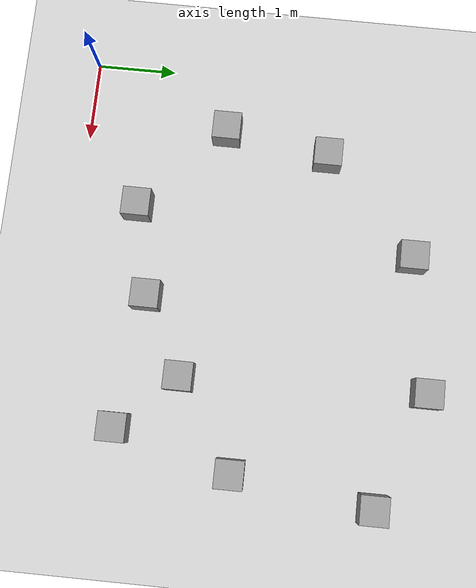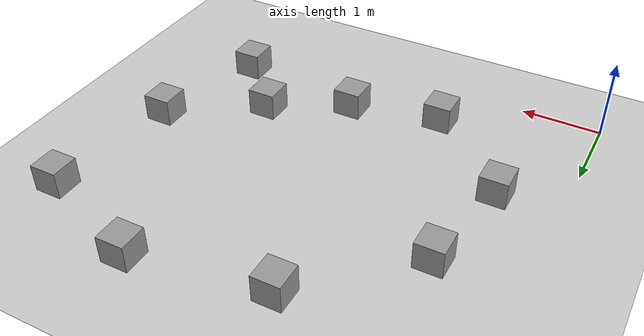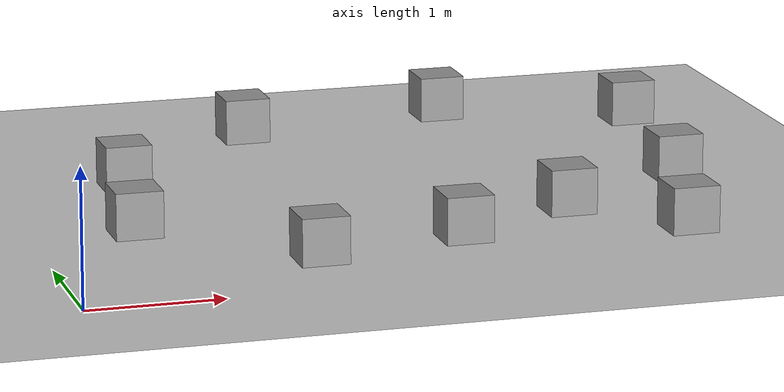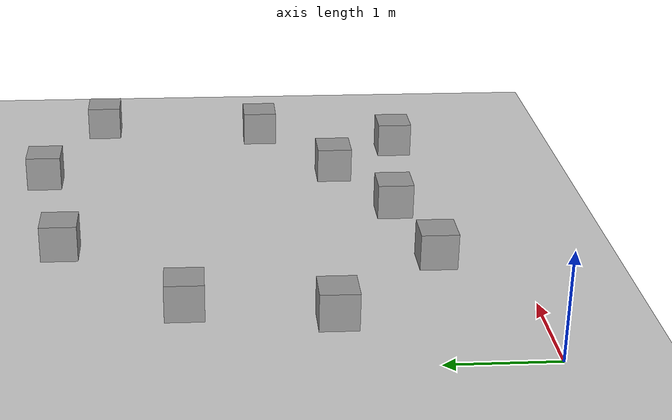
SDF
<sdf version="1.7">
 <world name="default">
  <light name="sun" type="directional">
   <pose>0 0 10 0 -0 0</pose>
   <diffuse>0.8 0.8 0.8 1</diffuse>
   <specular>0.2 0.2 0.2 1</specular>
   <attenuation>
    <range>1000</range>
    <constant>0.9</constant>
    <linear>0.01</linear>
    <quadratic>0.001</quadratic>
   </attenuation>
   <direction>-0.5 0.1 -0.9</direction>
   <spot><inner_angle>0</inner_angle><outer_angle>0</outer_angle><falloff>0</falloff></spot>
  </light>
  <model name="ground_plane">
   <static>1</static>
   <link name="link">
    <collision name="collision">
     <geometry><plane><normal>0 0 1</normal><size>100 100</size></plane></geometry>
     <surface>
      <contact><collide_bitmask>65535</collide_bitmask></contact>
      <friction><ode><mu>100</mu><mu2>50</mu2></ode></friction>
     </surface>
    </collision>
    <visual name="visual">
     <cast_shadows>0</cast_shadows>
     <geometry><plane><normal>0 0 1</normal><size>100 100</size></plane></geometry>
     <material>
      <script><uri>file://media/materials/scripts/gazebo.material</uri><name>Gazebo/Grey</name></script>
     </material>
    </visual>
   </link>
  </model>
  <gravity>0 0 -9.8</gravity>
  <magnetic_field>6e-06 2.3e-05 -4.2e-05</magnetic_field>
  <atmosphere type="adiabatic"/>
  <physics type="ode">
   <max_step_size>0.01</max_step_size>
   <real_time_factor>1</real_time_factor>
   <real_time_update_rate>100</real_time_update_rate>
  </physics>
  <scene><ambient>0.4 0.4 0.4 1</ambient><background>0.7 0.7 0.7 1</background><shadows>1</shadows></scene>
  <spherical_coordinates>
   <surface_model>EARTH_WGS84</surface_model>
   <latitude_deg>0</latitude_deg>
   <longitude_deg>0</longitude_deg>
   <elevation>0</elevation>
   <heading_deg>0</heading_deg>
  </spherical_coordinates>
  <model name="block35">
   <link name="link">
    <inertial>
     <mass>5.30426</mass>
     <inertia><ixx>4.09501</ixx><ixy>0</ixy><ixz>0</ixz><iyy>1.73225</iyy><iyz>0</iyz><izz>4.50976</izz></inertia>
    </inertial>
    <visual name="visual">
     <geometry><box><size>0.35 0.35 0.35</size></box></geometry>
     <material>
      <script><name>Gazebo/Grey</name><uri>file://media/materials/scripts/gazebo.material</uri></script>
      <shader type="pixel"/>
     </material>
    </visual>
    <collision name="collision">
     <geometry><box><size>0.35 0.35 0.35</size></box></geometry>
     <surface>
      <friction>
       <ode><mu>1</mu><mu2>1</mu2><fdir1>0 0 0</fdir1><slip1>0</slip1><slip2>0</slip2></ode>
       <torsional>
        <coefficient>1</coefficient>
        <patch_radius>0</patch_radius>
        <surface_radius>0</surface_radius>
        <use_patch_radius>1</use_patch_radius>
        <ode><slip>0</slip></ode>
       </torsional>
      </friction>
      <bounce><restitution_coefficient>0</restitution_coefficient><threshold>1e+06</threshold></bounce>
      <contact>
       <collide_without_contact>0</collide_without_contact>
       <collide_without_contact_bitmask>1</collide_without_contact_bitmask>
       <collide_bitmask>1</collide_bitmask>
       <ode>
        <soft_cfm>0</soft_cfm>
        <soft_erp>0.2</soft_erp>
        <kp>1e+13</kp>
        <kd>1</kd>
        <max_vel>0.01</max_vel>
        <min_depth>0</min_depth>
       </ode>
       <bullet>
        <split_impulse>1</split_impulse>
        <split_impulse_penetration_threshold>-0.01</split_impulse_penetration_threshold>
        <soft_cfm>0</soft_cfm>
        <soft_erp>0.2</soft_erp>
        <kp>1e+13</kp>
        <kd>1</kd>
       </bullet>
      </contact>
     </surface>
    </collision>
   </link>
   <static>0</static>
   <pose>0.763897 1.775 0.17504 0 0.000227 -0.001539</pose>
  </model>
  <model name="block35_0">
   <link name="link">
    <inertial>
     <mass>5.30426</mass>
     <inertia><ixx>4.09501</ixx><ixy>0</ixy><ixz>0</ixz><iyy>1.73225</iyy><iyz>0</iyz><izz>4.50976</izz></inertia>
    </inertial>
    <visual name="visual">
     <geometry><box><size>0.35 0.35 0.35</size></box></geometry>
     <material>
      <script><name>Gazebo/Grey</name><uri>file://media/materials/scripts/gazebo.material</uri></script>
      <shader type="pixel"/>
     </material>
    </visual>
    <collision name="collision">
     <geometry><box><size>0.35 0.35 0.35</size></box></geometry>
     <surface>
      <friction>
       <ode><mu>1</mu><mu2>1</mu2><fdir1>0 0 0</fdir1><slip1>0</slip1><slip2>0</slip2></ode>
       <torsional>
        <coefficient>1</coefficient>
        <patch_radius>0</patch_radius>
        <surface_radius>0</surface_radius>
        <use_patch_radius>1</use_patch_radius>
        <ode><slip>0</slip></ode>
       </torsional>
      </friction>
      <bounce><restitution_coefficient>0</restitution_coefficient><threshold>1e+06</threshold></bounce>
      <contact>
       <collide_without_contact>0</collide_without_contact>
       <collide_without_contact_bitmask>1</collide_without_contact_bitmask>
       <collide_bitmask>1</collide_bitmask>
       <ode>
        <soft_cfm>0</soft_cfm>
        <soft_erp>0.2</soft_erp>
        <kp>1e+13</kp>
        <kd>1</kd>
        <max_vel>0.01</max_vel>
        <min_depth>0</min_depth>
       </ode>
       <bullet>
        <split_impulse>1</split_impulse>
        <split_impulse_penetration_threshold>-0.01</split_impulse_penetration_threshold>
        <soft_cfm>0</soft_cfm>
        <soft_erp>0.2</soft_erp>
        <kp>1e+13</kp>
        <kd>1</kd>
       </bullet>
      </contact>
     </surface>
    </collision>
   </link>
   <static>0</static>
   <pose>2.19677 4.24642 0.174916 0.00017 -0.00031 0.002628</pose>
  </model>
  <model name="block35_1">
   <link name="link">
    <inertial>
     <mass>5.30426</mass>
     <inertia><ixx>4.09501</ixx><ixy>0</ixy><ixz>0</ixz><iyy>1.73225</iyy><iyz>0</iyz><izz>4.50976</izz></inertia>
    </inertial>
    <visual name="visual">
     <geometry><box><size>0.35 0.35 0.35</size></box></geometry>
     <material>
      <script><name>Gazebo/Grey</name><uri>file://media/materials/scripts/gazebo.material</uri></script>
      <shader type="pixel"/>
     </material>
    </visual>
    <collision name="collision">
     <geometry><box><size>0.35 0.35 0.35</size></box></geometry>
     <surface>
      <friction>
       <ode><mu>1</mu><mu2>1</mu2><fdir1>0 0 0</fdir1><slip1>0</slip1><slip2>0</slip2></ode>
       <torsional>
        <coefficient>1</coefficient>
        <patch_radius>0</patch_radius>
        <surface_radius>0</surface_radius>
        <use_patch_radius>1</use_patch_radius>
        <ode><slip>0</slip></ode>
       </torsional>
      </friction>
      <bounce><restitution_coefficient>0</restitution_coefficient><threshold>1e+06</threshold></bounce>
      <contact>
       <collide_without_contact>0</collide_without_contact>
       <collide_without_contact_bitmask>1</collide_without_contact_bitmask>
       <collide_bitmask>1</collide_bitmask>
       <ode>
        <soft_cfm>0</soft_cfm>
        <soft_erp>0.2</soft_erp>
        <kp>1e+13</kp>
        <kd>1</kd>
        <max_vel>0.01</max_vel>
        <min_depth>0</min_depth>
       </ode>
       <bullet>
        <split_impulse>1</split_impulse>
        <split_impulse_penetration_threshold>-0.01</split_impulse_penetration_threshold>
        <soft_cfm>0</soft_cfm>
        <soft_erp>0.2</soft_erp>
        <kp>1e+13</kp>
        <kd>1</kd>
       </bullet>
      </contact>
     </surface>
    </collision>
   </link>
   <static>0</static>
   <pose>5.04088 2.24799 0.174916 -0.00017 0.00031 0.001358</pose>
  </model>
  <model name="block35_2">
   <link name="link">
    <inertial>
     <mass>5.30426</mass>
     <inertia><ixx>4.09501</ixx><ixy>0</ixy><ixz>0</ixz><iyy>1.73225</iyy><iyz>0</iyz><izz>4.50976</izz></inertia>
    </inertial>
    <visual name="visual">
     <geometry><box><size>0.35 0.35 0.35</size></box></geometry>
     <material>
      <script><name>Gazebo/Grey</name><uri>file://media/materials/scripts/gazebo.material</uri></script>
      <shader type="pixel"/>
     </material>
    </visual>
    <collision name="collision">
     <geometry><box><size>0.35 0.35 0.35</size></box></geometry>
     <surface>
      <friction>
       <ode><mu>1</mu><mu2>1</mu2><fdir1>0 0 0</fdir1><slip1>0</slip1><slip2>0</slip2></ode>
       <torsional>
        <coefficient>1</coefficient>
        <patch_radius>0</patch_radius>
        <surface_radius>0</surface_radius>
        <use_patch_radius>1</use_patch_radius>
        <ode><slip>0</slip></ode>
       </torsional>
      </friction>
      <bounce><restitution_coefficient>0</restitution_coefficient><threshold>1e+06</threshold></bounce>
      <contact>
       <collide_without_contact>0</collide_without_contact>
       <collide_without_contact_bitmask>1</collide_without_contact_bitmask>
       <collide_bitmask>1</collide_bitmask>
       <ode>
        <soft_cfm>0</soft_cfm>
        <soft_erp>0.2</soft_erp>
        <kp>1e+13</kp>
        <kd>1</kd>
        <max_vel>0.01</max_vel>
        <min_depth>0</min_depth>
       </ode>
       <bullet>
        <split_impulse>1</split_impulse>
        <split_impulse_penetration_threshold>-0.01</split_impulse_penetration_threshold>
        <soft_cfm>0</soft_cfm>
        <soft_erp>0.2</soft_erp>
        <kp>1e+13</kp>
        <kd>1</kd>
       </bullet>
      </contact>
     </surface>
    </collision>
   </link>
   <static>0</static>
   <pose>4.62526 0.797918 0.174916 -0.00017 0.00031 0.001116</pose>
  </model>
  <model name="block35_3">
   <link name="link">
    <inertial>
     <mass>5.30426</mass>
     <inertia><ixx>4.09501</ixx><ixy>0</ixy><ixz>0</ixz><iyy>1.73225</iyy><iyz>0</iyz><izz>4.50976</izz></inertia>
    </inertial>
    <visual name="visual">
     <geometry><box><size>0.35 0.35 0.35</size></box></geometry>
     <material>
      <script><name>Gazebo/Grey</name><uri>file://media/materials/scripts/gazebo.material</uri></script>
      <shader type="pixel"/>
     </material>
    </visual>
    <collision name="collision">
     <geometry><box><size>0.35 0.35 0.35</size></box></geometry>
     <surface>
      <friction>
       <ode><mu>1</mu><mu2>1</mu2><fdir1>0 0 0</fdir1><slip1>0</slip1><slip2>0</slip2></ode>
       <torsional>
        <coefficient>1</coefficient>
        <patch_radius>0</patch_radius>
        <surface_radius>0</surface_radius>
        <use_patch_radius>1</use_patch_radius>
        <ode><slip>0</slip></ode>
       </torsional>
      </friction>
      <bounce><restitution_coefficient>0</restitution_coefficient><threshold>1e+06</threshold></bounce>
      <contact>
       <collide_without_contact>0</collide_without_contact>
       <collide_without_contact_bitmask>1</collide_without_contact_bitmask>
       <collide_bitmask>1</collide_bitmask>
       <ode>
        <soft_cfm>0</soft_cfm>
        <soft_erp>0.2</soft_erp>
        <kp>1e+13</kp>
        <kd>1</kd>
        <max_vel>0.01</max_vel>
        <min_depth>0</min_depth>
       </ode>
       <bullet>
        <split_impulse>1</split_impulse>
        <split_impulse_penetration_threshold>-0.01</split_impulse_penetration_threshold>
        <soft_cfm>0</soft_cfm>
        <soft_erp>0.2</soft_erp>
        <kp>1e+13</kp>
        <kd>1</kd>
       </bullet>
      </contact>
     </surface>
    </collision>
   </link>
   <static>0</static>
   <pose>2.99221 1.0012 0.17504 -0 0.000227 -0.001426</pose>
  </model>
  <model name="block35_4">
   <link name="link">
    <inertial>
     <mass>5.30426</mass>
     <inertia><ixx>4.09501</ixx><ixy>0</ixy><ixz>0</ixz><iyy>1.73225</iyy><iyz>0</iyz><izz>4.50976</izz></inertia>
    </inertial>
    <visual name="visual">
     <geometry><box><size>0.35 0.35 0.35</size></box></geometry>
     <material>
      <script><name>Gazebo/Grey</name><uri>file://media/materials/scripts/gazebo.material</uri></script>
      <shader type="pixel"/>
     </material>
    </visual>
    <collision name="collision">
     <geometry><box><size>0.35 0.35 0.35</size></box></geometry>
     <surface>
      <friction>
       <ode><mu>1</mu><mu2>1</mu2><fdir1>0 0 0</fdir1><slip1>0</slip1><slip2>0</slip2></ode>
       <torsional>
        <coefficient>1</coefficient>
        <patch_radius>0</patch_radius>
        <surface_radius>0</surface_radius>
        <use_patch_radius>1</use_patch_radius>
        <ode><slip>0</slip></ode>
       </torsional>
      </friction>
      <bounce><restitution_coefficient>0</restitution_coefficient><threshold>1e+06</threshold></bounce>
      <contact>
       <collide_without_contact>0</collide_without_contact>
       <collide_without_contact_bitmask>1</collide_without_contact_bitmask>
       <collide_bitmask>1</collide_bitmask>
       <ode>
        <soft_cfm>0</soft_cfm>
        <soft_erp>0.2</soft_erp>
        <kp>1e+13</kp>
        <kd>1</kd>
        <max_vel>0.01</max_vel>
        <min_depth>0</min_depth>
       </ode>
       <bullet>
        <split_impulse>1</split_impulse>
        <split_impulse_penetration_threshold>-0.01</split_impulse_penetration_threshold>
        <soft_cfm>0</soft_cfm>
        <soft_erp>0.2</soft_erp>
        <kp>1e+13</kp>
        <kd>1</kd>
       </bullet>
      </contact>
     </surface>
    </collision>
   </link>
   <static>0</static>
   <pose>0.98369 3.08183 0.174916 0.00017 -0.00031 0.000807</pose>
  </model>
  <model name="block35_5">
   <link name="link">
    <inertial>
     <mass>5.30426</mass>
     <inertia><ixx>4.09501</ixx><ixy>0</ixy><ixz>0</ixz><iyy>1.73225</iyy><iyz>0</iyz><izz>4.50976</izz></inertia>
    </inertial>
    <visual name="visual">
     <geometry><box><size>0.35 0.35 0.35</size></box></geometry>
     <material>
      <script><name>Gazebo/Grey</name><uri>file://media/materials/scripts/gazebo.material</uri></script>
      <shader type="pixel"/>
     </material>
    </visual>
    <collision name="collision">
     <geometry><box><size>0.35 0.35 0.35</size></box></geometry>
     <surface>
      <friction>
       <ode><mu>1</mu><mu2>1</mu2><fdir1>0 0 0</fdir1><slip1>0</slip1><slip2>0</slip2></ode>
       <torsional>
        <coefficient>1</coefficient>
        <patch_radius>0</patch_radius>
        <surface_radius>0</surface_radius>
        <use_patch_radius>1</use_patch_radius>
        <ode><slip>0</slip></ode>
       </torsional>
      </friction>
      <bounce><restitution_coefficient>0</restitution_coefficient><threshold>1e+06</threshold></bounce>
      <contact>
       <collide_without_contact>0</collide_without_contact>
       <collide_without_contact_bitmask>1</collide_without_contact_bitmask>
       <collide_bitmask>1</collide_bitmask>
       <ode>
        <soft_cfm>0</soft_cfm>
        <soft_erp>0.2</soft_erp>
        <kp>1e+13</kp>
        <kd>1</kd>
        <max_vel>0.01</max_vel>
        <min_depth>0</min_depth>
       </ode>
       <bullet>
        <split_impulse>1</split_impulse>
        <split_impulse_penetration_threshold>-0.01</split_impulse_penetration_threshold>
        <soft_cfm>0</soft_cfm>
        <soft_erp>0.2</soft_erp>
        <kp>1e+13</kp>
        <kd>1</kd>
       </bullet>
      </contact>
     </surface>
    </collision>
   </link>
   <static>0</static>
   <pose>5.2847 3.98347 0.174916 -0.00017 0.00031 0.001549</pose>
  </model>
  <model name="block35_6">
   <link name="link">
    <inertial>
     <mass>5.30426</mass>
     <inertia><ixx>4.09501</ixx><ixy>0</ixy><ixz>0</ixz><iyy>1.73225</iyy><iyz>0</iyz><izz>4.50976</izz></inertia>
    </inertial>
    <visual name="visual">
     <geometry><box><size>0.35 0.35 0.35</size></box></geometry>
     <material>
      <script><name>Gazebo/Grey</name><uri>file://media/materials/scripts/gazebo.material</uri></script>
      <shader type="pixel"/>
     </material>
    </visual>
    <collision name="collision">
     <geometry><box><size>0.35 0.35 0.35</size></box></geometry>
     <surface>
      <friction>
       <ode><mu>1</mu><mu2>1</mu2><fdir1>0 0 0</fdir1><slip1>0</slip1><slip2>0</slip2></ode>
       <torsional>
        <coefficient>1</coefficient>
        <patch_radius>0</patch_radius>
        <surface_radius>0</surface_radius>
        <use_patch_radius>1</use_patch_radius>
        <ode><slip>0</slip></ode>
       </torsional>
      </friction>
      <bounce><restitution_coefficient>0</restitution_coefficient><threshold>1e+06</threshold></bounce>
      <contact>
       <collide_without_contact>0</collide_without_contact>
       <collide_without_contact_bitmask>1</collide_without_contact_bitmask>
       <collide_bitmask>1</collide_bitmask>
       <ode>
        <soft_cfm>0</soft_cfm>
        <soft_erp>0.2</soft_erp>
        <kp>1e+13</kp>
        <kd>1</kd>
        <max_vel>0.01</max_vel>
        <min_depth>0</min_depth>
       </ode>
       <bullet>
        <split_impulse>1</split_impulse>
        <split_impulse_penetration_threshold>-0.01</split_impulse_penetration_threshold>
        <soft_cfm>0</soft_cfm>
        <soft_erp>0.2</soft_erp>
        <kp>1e+13</kp>
        <kd>1</kd>
       </bullet>
      </contact>
     </surface>
    </collision>
   </link>
   <static>0</static>
   <pose>3.94714 1.51689 0.17504 -0 -0.000227 -0.001566</pose>
  </model>
  <model name="block35_7">
   <link name="link">
    <inertial>
     <mass>5.30426</mass>
     <inertia><ixx>4.09501</ixx><ixy>0</ixy><ixz>0</ixz><iyy>1.73225</iyy><iyz>0</iyz><izz>4.50976</izz></inertia>
    </inertial>
    <visual name="visual">
     <geometry><box><size>0.35 0.35 0.35</size></box></geometry>
     <material>
      <script><name>Gazebo/Grey</name><uri>file://media/materials/scripts/gazebo.material</uri></script>
      <shader type="pixel"/>
     </material>
    </visual>
    <collision name="collision">
     <geometry><box><size>0.35 0.35 0.35</size></box></geometry>
     <surface>
      <friction>
       <ode><mu>1</mu><mu2>1</mu2><fdir1>0 0 0</fdir1><slip1>0</slip1><slip2>0</slip2></ode>
       <torsional>
        <coefficient>1</coefficient>
        <patch_radius>0</patch_radius>
        <surface_radius>0</surface_radius>
        <use_patch_radius>1</use_patch_radius>
        <ode><slip>0</slip></ode>
       </torsional>
      </friction>
      <bounce><restitution_coefficient>0</restitution_coefficient><threshold>1e+06</threshold></bounce>
      <contact>
       <collide_without_contact>0</collide_without_contact>
       <collide_without_contact_bitmask>1</collide_without_contact_bitmask>
       <collide_bitmask>1</collide_bitmask>
       <ode>
        <soft_cfm>0</soft_cfm>
        <soft_erp>0.2</soft_erp>
        <kp>1e+13</kp>
        <kd>1</kd>
        <max_vel>0.01</max_vel>
        <min_depth>0</min_depth>
       </ode>
       <bullet>
        <split_impulse>1</split_impulse>
        <split_impulse_penetration_threshold>-0.01</split_impulse_penetration_threshold>
        <soft_cfm>0</soft_cfm>
        <soft_erp>0.2</soft_erp>
        <kp>1e+13</kp>
        <kd>1</kd>
       </bullet>
      </contact>
     </surface>
    </collision>
   </link>
   <static>0</static>
   <pose>1.85826 0.751389 0.174916 0.00017 0.00031 -0.000261</pose>
  </model>
  <model name="block35_8">
   <link name="link">
    <inertial>
     <mass>5.30426</mass>
     <inertia><ixx>4.09501</ixx><ixy>0</ixy><ixz>0</ixz><iyy>1.73225</iyy><iyz>0</iyz><izz>4.50976</izz></inertia>
    </inertial>
    <visual name="visual">
     <geometry><box><size>0.35 0.35 0.35</size></box></geometry>
     <material>
      <script><name>Gazebo/Grey</name><uri>file://media/materials/scripts/gazebo.material</uri></script>
      <shader type="pixel"/>
     </material>
    </visual>
    <collision name="collision">
     <geometry><box><size>0.35 0.35 0.35</size></box></geometry>
     <surface>
      <friction>
       <ode><mu>1</mu><mu2>1</mu2><fdir1>0 0 0</fdir1><slip1>0</slip1><slip2>0</slip2></ode>
       <torsional>
        <coefficient>1</coefficient>
        <patch_radius>0</patch_radius>
        <surface_radius>0</surface_radius>
        <use_patch_radius>1</use_patch_radius>
        <ode><slip>0</slip></ode>
       </torsional>
      </friction>
      <bounce><restitution_coefficient>0</restitution_coefficient><threshold>1e+06</threshold></bounce>
      <contact>
       <collide_without_contact>0</collide_without_contact>
       <collide_without_contact_bitmask>1</collide_without_contact_bitmask>
       <collide_bitmask>1</collide_bitmask>
       <ode>
        <soft_cfm>0</soft_cfm>
        <soft_erp>0.2</soft_erp>
        <kp>1e+13</kp>
        <kd>1</kd>
        <max_vel>0.01</max_vel>
        <min_depth>0</min_depth>
       </ode>
       <bullet>
        <split_impulse>1</split_impulse>
        <split_impulse_penetration_threshold>-0.01</split_impulse_penetration_threshold>
        <soft_cfm>0</soft_cfm>
        <soft_erp>0.2</soft_erp>
        <kp>1e+13</kp>
        <kd>1</kd>
       </bullet>
      </contact>
     </surface>
    </collision>
   </link>
   <static>0</static>
   <pose>3.86801 4.53344 0.174916 0.00017 -0.00031 0.001523</pose>
  </model>
 </world>
</sdf>
